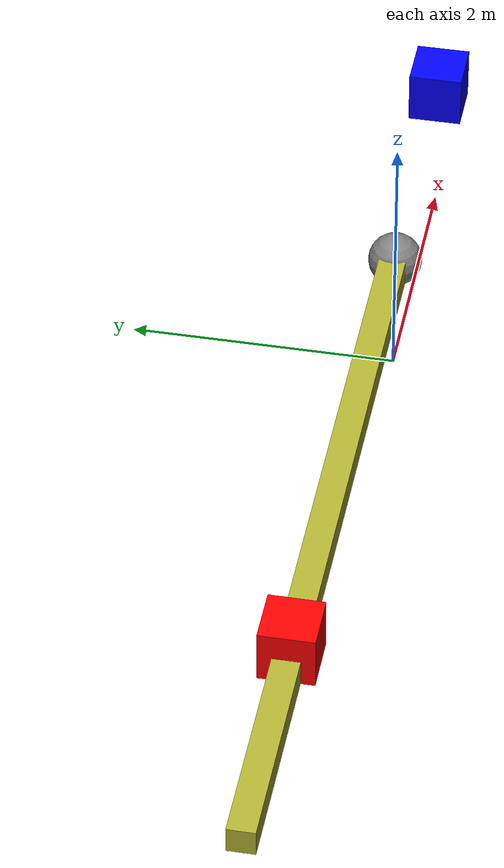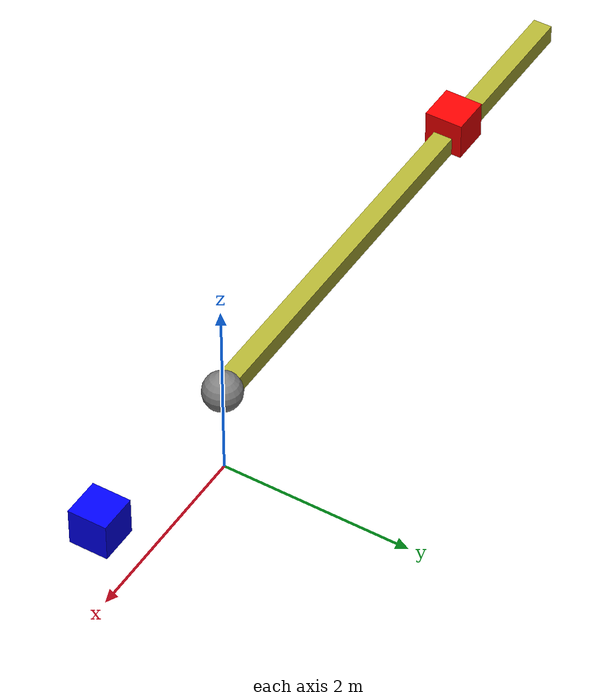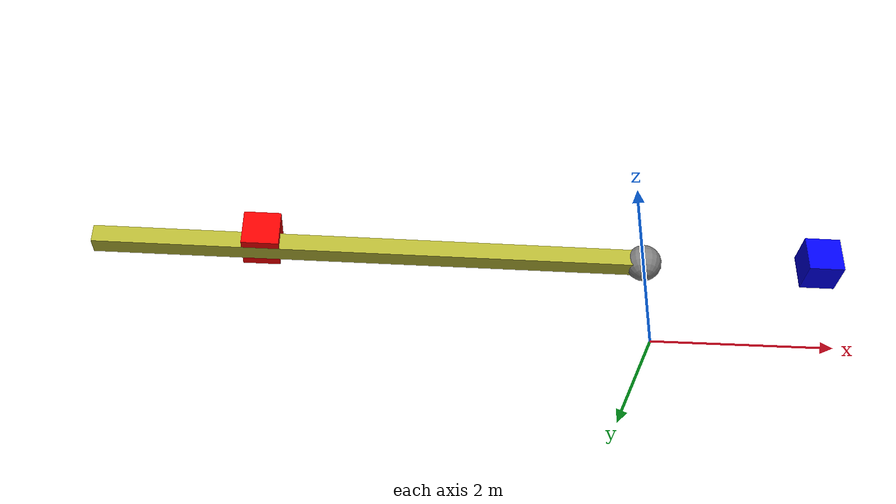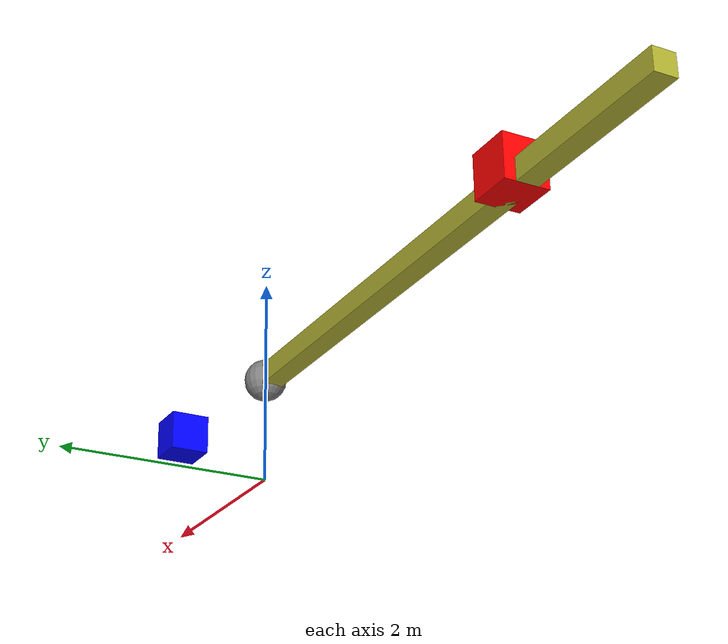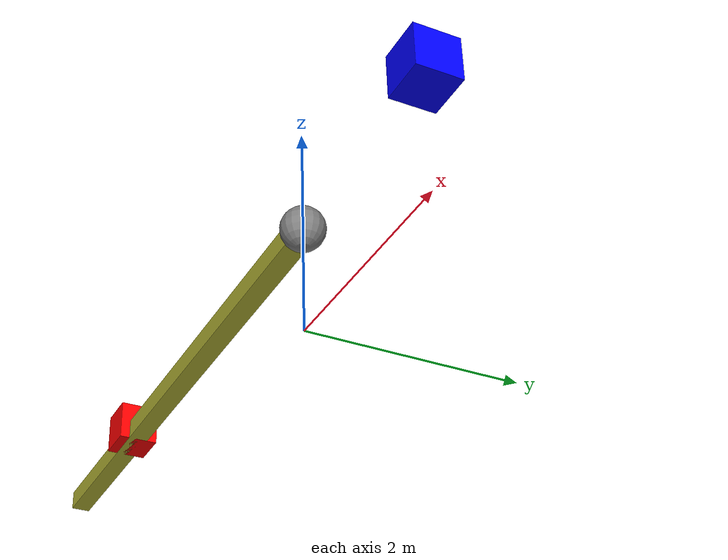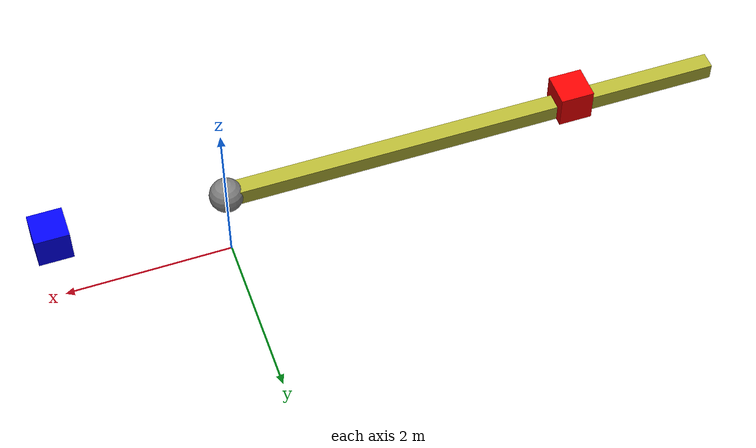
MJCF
<mujoco>
  <option gravity="0 0 -9.81"/>
  <worldbody>
    <body name="fulcrum" pos="0 0 1">
      <geom type="sphere" size="0.2" rgba="0.5 0.5 0.5 1"/>
    </body>
    <body name="beam" pos="-3 0 1">
      <geom type="box" size="3 0.1 0.1" rgba="0.7 0.7 0.2 1"/>
    </body>
    <body name="weight1" pos="-4.21 0 1.1">
      <geom type="box" size="0.2 0.2 0.2" mass="1.08" rgba="1 0 0 1"/>
      <joint name="weight1_joint" type="free"/>
    </body>
    <body name="weight2" pos="2.02 0 1.1">
      <geom type="box" size="0.2 0.2 0.2" mass="0.93" rgba="0 0 1 1"/>
      <joint name="weight2_joint" type="free"/>
    </body>
  </worldbody>
</mujoco>
